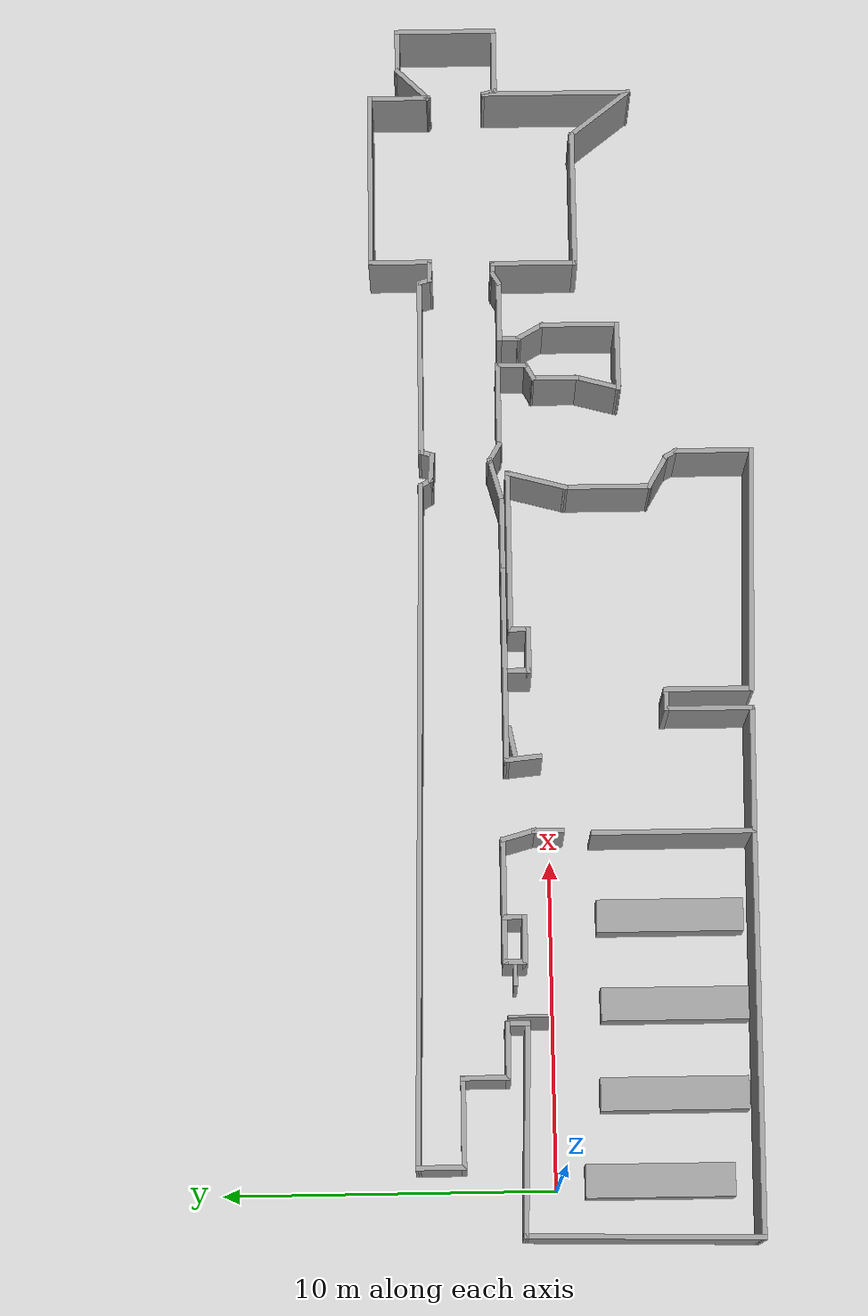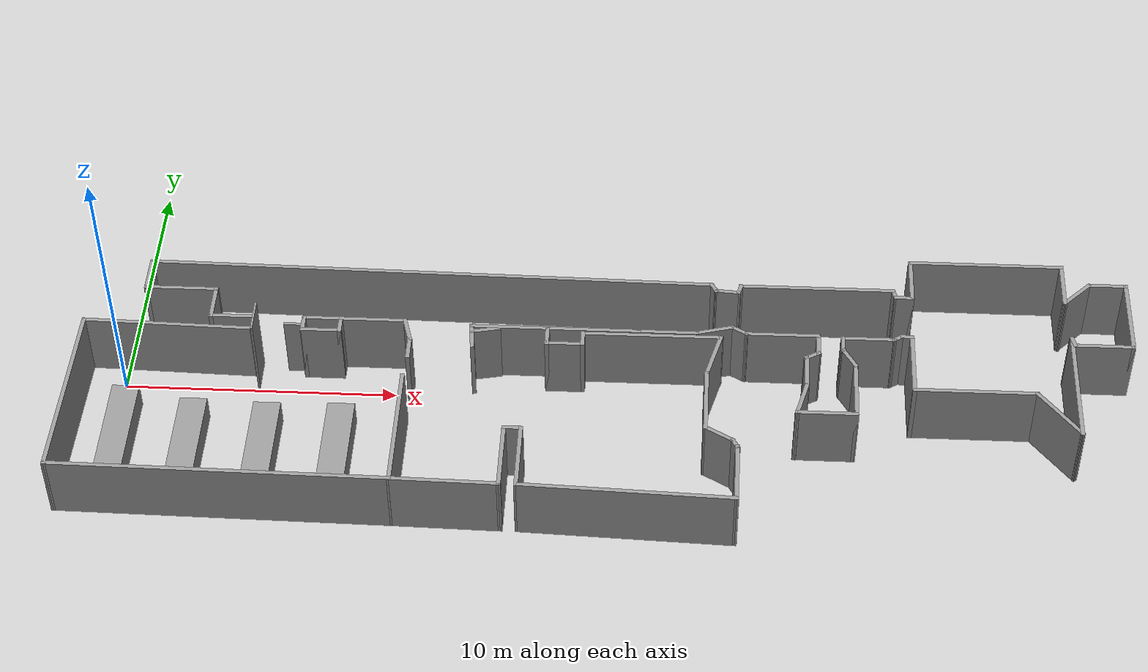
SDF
<sdf version="1.7">
 <world name="default">
  <light name="sun" type="directional">
   <pose>0 0 10 0 -0 0</pose>
   <diffuse>0.8 0.8 0.8 1</diffuse>
   <specular>0.2 0.2 0.2 1</specular>
   <attenuation>
    <range>1000</range>
    <constant>0.9</constant>
    <linear>0.01</linear>
    <quadratic>0.001</quadratic>
   </attenuation>
   <direction>-0.5 0.1 -0.9</direction>
   <spot><inner_angle>0</inner_angle><outer_angle>0</outer_angle><falloff>0</falloff></spot>
  </light>
  <model name="ground_plane">
   <static>1</static>
   <link name="link">
    <collision name="collision">
     <geometry><plane><normal>0 0 1</normal><size>100 100</size></plane></geometry>
     <surface>
      <contact><collide_bitmask>65535</collide_bitmask></contact>
      <friction><ode><mu>100</mu><mu2>50</mu2></ode></friction>
     </surface>
    </collision>
    <visual name="visual">
     <cast_shadows>0</cast_shadows>
     <geometry><plane><normal>0 0 1</normal><size>100 100</size></plane></geometry>
     <material>
      <script><uri>file://media/materials/scripts/gazebo.material</uri><name>Gazebo/Grey</name></script>
     </material>
    </visual>
   </link>
  </model>
  <gravity>0 0 -9.8</gravity>
  <magnetic_field>6e-06 2.3e-05 -4.2e-05</magnetic_field>
  <atmosphere type="adiabatic"/>
  <physics type="ode">
   <max_step_size>0.001</max_step_size>
   <real_time_factor>1</real_time_factor>
   <real_time_update_rate>1000</real_time_update_rate>
  </physics>
  <scene><ambient>0.4 0.4 0.4 1</ambient><background>0.7 0.7 0.7 1</background><shadows>1</shadows></scene>
  <spherical_coordinates>
   <surface_model>EARTH_WGS84</surface_model>
   <latitude_deg>0</latitude_deg>
   <longitude_deg>0</longitude_deg>
   <elevation>0</elevation>
   <heading_deg>0</heading_deg>
  </spherical_coordinates>
  <model name="LAB_FEUPf">
   <pose>17.588 -0.590067 0 0 -0 0</pose>
   <link name="Wall_0">
    <collision name="Wall_0_Collision">
     <geometry><box><size>6.35491 0.15 2.5</size></box></geometry>
     <pose>0 0 1.25 0 -0 0</pose>
    </collision>
    <visual name="Wall_0_Visual">
     <pose>0 0 1.25 0 -0 0</pose>
     <geometry><box><size>6.35491 0.15 2.5</size></box></geometry>
     <material>
      <script><uri>file://media/materials/scripts/gazebo.material</uri><name>Gazebo/Grey</name></script>
      <ambient>1 1 1 1</ambient>
     </material>
     <meta><layer>0</layer></meta>
    </visual>
    <pose>-15.9124 1.49626 0 0 -0 -0.027711</pose>
   </link>
   <link name="Wall_1">
    <collision name="Wall_1_Collision">
     <geometry><box><size>0.75 0.15 2.5</size></box></geometry>
     <pose>0 0 1.25 0 -0 0</pose>
    </collision>
    <visual name="Wall_1_Visual">
     <pose>0 0 1.25 0 -0 0</pose>
     <geometry><box><size>0.75 0.15 2.5</size></box></geometry>
     <material>
      <script><uri>file://media/materials/scripts/gazebo.material</uri><name>Gazebo/Grey</name></script>
      <ambient>1 1 1 1</ambient>
     </material>
     <meta><layer>0</layer></meta>
    </visual>
    <pose>-12.8111 1.7103 0 0 -0 1.5708</pose>
   </link>
   <link name="Wall_10">
    <collision name="Wall_10_Collision">
     <geometry><box><size>2.5 0.15 2.5</size></box></geometry>
     <pose>0 0 1.25 0 -0 0</pose>
    </collision>
    <visual name="Wall_10_Visual">
     <pose>0 0 1.25 0 -0 0</pose>
     <geometry><box><size>2.5 0.15 2.5</size></box></geometry>
     <material>
      <script><uri>file://media/materials/scripts/gazebo.material</uri><name>Gazebo/Grey</name></script>
      <ambient>1 1 1 1</ambient>
     </material>
     <meta><layer>0</layer></meta>
    </visual>
    <pose>-8.46271 2.05017 0 0 -0 3.14159</pose>
   </link>
   <link name="Wall_11">
    <collision name="Wall_11_Collision">
     <geometry><box><size>0.75 0.15 2.5</size></box></geometry>
     <pose>0 0 1.25 0 -0 0</pose>
    </collision>
    <visual name="Wall_11_Visual">
     <pose>0 0 1.25 0 -0 0</pose>
     <geometry><box><size>0.75 0.15 2.5</size></box></geometry>
     <material>
      <script><uri>file://media/materials/scripts/gazebo.material</uri><name>Gazebo/Grey</name></script>
      <ambient>1 1 1 1</ambient>
     </material>
     <meta><layer>0</layer></meta>
    </visual>
    <pose>-9.63771 1.75017 0 0 -0 -1.5708</pose>
   </link>
   <link name="Wall_12">
    <collision name="Wall_12_Collision">
     <geometry><box><size>1.5 0.15 2.5</size></box></geometry>
     <pose>0 0 1.25 0 -0 0</pose>
    </collision>
    <visual name="Wall_12_Visual">
     <pose>0 0 1.25 0 -0 0</pose>
     <geometry><box><size>1.5 0.15 2.5</size></box></geometry>
     <material>
      <script><uri>file://media/materials/scripts/gazebo.material</uri><name>Gazebo/Grey</name></script>
      <ambient>1 1 1 1</ambient>
     </material>
     <meta><layer>0</layer></meta>
    </visual>
    <pose>-10.3127 1.45017 0 0 -0 3.14159</pose>
   </link>
   <link name="Wall_13">
    <collision name="Wall_13_Collision">
     <geometry><box><size>0.75 0.15 2.5</size></box></geometry>
     <pose>0 0 1.25 0 -0 0</pose>
    </collision>
    <visual name="Wall_13_Visual">
     <pose>0 0 1.25 0 -0 0</pose>
     <geometry><box><size>0.75 0.15 2.5</size></box></geometry>
     <material>
      <script><uri>file://media/materials/scripts/gazebo.material</uri><name>Gazebo/Grey</name></script>
      <ambient>1 1 1 1</ambient>
     </material>
     <meta><layer>0</layer></meta>
    </visual>
    <pose>-10.9877 1.75017 0 0 -0 1.5708</pose>
   </link>
   <link name="Wall_14">
    <collision name="Wall_14_Collision">
     <geometry><box><size>1.5 0.15 2.5</size></box></geometry>
     <pose>0 0 1.25 0 -0 0</pose>
    </collision>
    <visual name="Wall_14_Visual">
     <pose>0 0 1.25 0 -0 0</pose>
     <geometry><box><size>1.5 0.15 2.5</size></box></geometry>
     <material>
      <script><uri>file://media/materials/scripts/gazebo.material</uri><name>Gazebo/Grey</name></script>
      <ambient>1 1 1 1</ambient>
     </material>
     <meta><layer>0</layer></meta>
    </visual>
    <pose>-10.3127 2.05017 0 0 -0 0</pose>
   </link>
   <link name="Wall_16">
    <collision name="Wall_16_Collision">
     <geometry><box><size>1.75 0.15 2.5</size></box></geometry>
     <pose>0 0 1.25 0 -0 0</pose>
    </collision>
    <visual name="Wall_16_Visual">
     <pose>0 0 1.25 0 -0 0</pose>
     <geometry><box><size>1.75 0.15 2.5</size></box></geometry>
     <material>
      <script><uri>file://media/materials/scripts/gazebo.material</uri><name>Gazebo/Grey</name></script>
      <ambient>1 1 1 1</ambient>
     </material>
     <meta><layer>0</layer></meta>
    </visual>
    <pose>-13.6111 2.0103 0 0 -0 3.14159</pose>
   </link>
   <link name="Wall_17">
    <collision name="Wall_17_Collision">
     <geometry><box><size>1.5 0.15 2.5</size></box></geometry>
     <pose>0 0 1.25 0 -0 0</pose>
    </collision>
    <visual name="Wall_17_Visual">
     <pose>0 0 1.25 0 -0 0</pose>
     <geometry><box><size>1.5 0.15 2.5</size></box></geometry>
     <material>
      <script><uri>file://media/materials/scripts/gazebo.material</uri><name>Gazebo/Grey</name></script>
      <ambient>1 1 1 1</ambient>
     </material>
     <meta><layer>0</layer></meta>
    </visual>
    <pose>-14.4111 2.6853 0 0 -0 1.5708</pose>
   </link>
   <link name="Wall_18">
    <collision name="Wall_18_Collision">
     <geometry><box><size>2.75 0.15 2.5</size></box></geometry>
     <pose>0 0 1.25 0 -0 0</pose>
    </collision>
    <visual name="Wall_18_Visual">
     <pose>0 0 1.25 0 -0 0</pose>
     <geometry><box><size>2.75 0.15 2.5</size></box></geometry>
     <material>
      <script><uri>file://media/materials/scripts/gazebo.material</uri><name>Gazebo/Grey</name></script>
      <ambient>1 1 1 1</ambient>
     </material>
     <meta><layer>0</layer></meta>
    </visual>
    <pose>-15.7111 3.3603 0 0 -0 3.14159</pose>
   </link>
   <link name="Wall_19">
    <collision name="Wall_19_Collision">
     <geometry><box><size>1.5 0.15 2.5</size></box></geometry>
     <pose>0 0 1.25 0 -0 0</pose>
    </collision>
    <visual name="Wall_19_Visual">
     <pose>0 0 1.25 0 -0 0</pose>
     <geometry><box><size>1.5 0.15 2.5</size></box></geometry>
     <material>
      <script><uri>file://media/materials/scripts/gazebo.material</uri><name>Gazebo/Grey</name></script>
      <ambient>1 1 1 1</ambient>
     </material>
     <meta><layer>0</layer></meta>
    </visual>
    <pose>-17.0111 4.0353 0 0 -0 1.5708</pose>
   </link>
   <link name="Wall_21">
    <collision name="Wall_21_Collision">
     <geometry><box><size>21.0277 0.15 2.5</size></box></geometry>
     <pose>0 0 1.25 0 -0 0</pose>
    </collision>
    <visual name="Wall_21_Visual">
     <pose>0 0 1.25 0 -0 0</pose>
     <geometry><box><size>21.0277 0.15 2.5</size></box></geometry>
     <material>
      <script><uri>file://media/materials/scripts/gazebo.material</uri><name>Gazebo/Grey</name></script>
      <ambient>1 1 1 1</ambient>
     </material>
     <meta><layer>0</layer></meta>
    </visual>
    <pose>-6.57344 4.55455 0 0 -0 -0.014921</pose>
   </link>
   <link name="Wall_22">
    <collision name="Wall_22_Collision">
     <geometry><box><size>0.5 0.15 2.5</size></box></geometry>
     <pose>0 0 1.25 0 -0 0</pose>
    </collision>
    <visual name="Wall_22_Visual">
     <pose>0 0 1.25 0 -0 0</pose>
     <geometry><box><size>0.5 0.15 2.5</size></box></geometry>
     <material>
      <script><uri>file://media/materials/scripts/gazebo.material</uri><name>Gazebo/Grey</name></script>
      <ambient>1 1 1 1</ambient>
     </material>
     <meta><layer>0</layer></meta>
    </visual>
    <pose>3.95174 4.24724 0 0 -0 -1.0472</pose>
   </link>
   <link name="Wall_23">
    <collision name="Wall_23_Collision">
     <geometry><box><size>0.978997 0.15 2.5</size></box></geometry>
     <pose>0 0 1.25 0 -0 0</pose>
    </collision>
    <visual name="Wall_23_Visual">
     <pose>0 0 1.25 0 -0 0</pose>
     <geometry><box><size>0.978997 0.15 2.5</size></box></geometry>
     <material>
      <script><uri>file://media/materials/scripts/gazebo.material</uri><name>Gazebo/Grey</name></script>
      <ambient>1 1 1 1</ambient>
     </material>
     <meta><layer>0</layer></meta>
    </visual>
    <pose>4.45273 4.06694 0 0 -0 -0.069417</pose>
   </link>
   <link name="Wall_26">
    <collision name="Wall_26_Collision">
     <geometry><box><size>0.5 0.15 2.5</size></box></geometry>
     <pose>0 0 1.25 0 -0 0</pose>
    </collision>
    <visual name="Wall_26_Visual">
     <pose>0 0 1.25 0 -0 0</pose>
     <geometry><box><size>0.5 0.15 2.5</size></box></geometry>
     <material>
      <script><uri>file://media/materials/scripts/gazebo.material</uri><name>Gazebo/Grey</name></script>
      <ambient>1 1 1 1</ambient>
     </material>
     <meta><layer>0</layer></meta>
    </visual>
    <pose>4.91153 4.20723 0 0 -0 1.309</pose>
   </link>
   <link name="Wall_27">
    <collision name="Wall_27_Collision">
     <geometry><box><size>5.75 0.15 2.5</size></box></geometry>
     <pose>0 0 1.25 0 -0 0</pose>
    </collision>
    <visual name="Wall_27_Visual">
     <pose>0 0 1.25 0 -0 0</pose>
     <geometry><box><size>5.75 0.15 2.5</size></box></geometry>
     <material>
      <script><uri>file://media/materials/scripts/gazebo.material</uri><name>Gazebo/Grey</name></script>
      <ambient>1 1 1 1</ambient>
     </material>
     <meta><layer>0</layer></meta>
    </visual>
    <pose>7.75682 4.37626 0 0 -0 0</pose>
   </link>
   <link name="Wall_28">
    <collision name="Wall_28_Collision">
     <geometry><box><size>0.5 0.15 2.5</size></box></geometry>
     <pose>0 0 1.25 0 -0 0</pose>
    </collision>
    <visual name="Wall_28_Visual">
     <pose>0 0 1.25 0 -0 0</pose>
     <geometry><box><size>0.5 0.15 2.5</size></box></geometry>
     <material>
      <script><uri>file://media/materials/scripts/gazebo.material</uri><name>Gazebo/Grey</name></script>
      <ambient>1 1 1 1</ambient>
     </material>
     <meta><layer>0</layer></meta>
    </visual>
    <pose>10.6021 4.20723 0 0 -0 -1.309</pose>
   </link>
   <link name="Wall_29">
    <collision name="Wall_29_Collision">
     <geometry><box><size>0.75 0.15 2.5</size></box></geometry>
     <pose>0 0 1.25 0 -0 0</pose>
    </collision>
    <visual name="Wall_29_Visual">
     <pose>0 0 1.25 0 -0 0</pose>
     <geometry><box><size>0.75 0.15 2.5</size></box></geometry>
     <material>
      <script><uri>file://media/materials/scripts/gazebo.material</uri><name>Gazebo/Grey</name></script>
      <ambient>1 1 1 1</ambient>
     </material>
     <meta><layer>0</layer></meta>
    </visual>
    <pose>10.9474 4.03819 0 0 -0 0</pose>
   </link>
   <link name="Wall_30">
    <collision name="Wall_30_Collision">
     <geometry><box><size>2 0.15 2.5</size></box></geometry>
     <pose>0 0 1.25 0 -0 0</pose>
    </collision>
    <visual name="Wall_30_Visual">
     <pose>0 0 1.25 0 -0 0</pose>
     <geometry><box><size>2 0.15 2.5</size></box></geometry>
     <material>
      <script><uri>file://media/materials/scripts/gazebo.material</uri><name>Gazebo/Grey</name></script>
      <ambient>1 1 1 1</ambient>
     </material>
     <meta><layer>0</layer></meta>
    </visual>
    <pose>11.2474 4.96319 0 0 -0 1.5708</pose>
   </link>
   <link name="Wall_32">
    <collision name="Wall_32_Collision">
     <geometry><box><size>5.75 0.15 2.5</size></box></geometry>
     <pose>0 0 1.25 0 -0 0</pose>
    </collision>
    <visual name="Wall_32_Visual">
     <pose>0 0 1.25 0 -0 0</pose>
     <geometry><box><size>5.75 0.15 2.5</size></box></geometry>
     <material>
      <script><uri>file://media/materials/scripts/gazebo.material</uri><name>Gazebo/Grey</name></script>
      <ambient>1 1 1 1</ambient>
     </material>
     <meta><layer>0</layer></meta>
    </visual>
    <pose>14.0474 5.88819 0 0 -0 0</pose>
   </link>
   <link name="Wall_33">
    <collision name="Wall_33_Collision">
     <geometry><box><size>2 0.15 2.5</size></box></geometry>
     <pose>0 0 1.25 0 -0 0</pose>
    </collision>
    <visual name="Wall_33_Visual">
     <pose>0 0 1.25 0 -0 0</pose>
     <geometry><box><size>2 0.15 2.5</size></box></geometry>
     <material>
      <script><uri>file://media/materials/scripts/gazebo.material</uri><name>Gazebo/Grey</name></script>
      <ambient>1 1 1 1</ambient>
     </material>
     <meta><layer>0</layer></meta>
    </visual>
    <pose>16.8474 4.96319 0 0 -0 -1.5708</pose>
   </link>
   <link name="Wall_34">
    <collision name="Wall_34_Collision">
     <geometry><box><size>1.5 0.15 2.5</size></box></geometry>
     <pose>0 0 1.25 0 -0 0</pose>
    </collision>
    <visual name="Wall_34_Visual">
     <pose>0 0 1.25 0 -0 0</pose>
     <geometry><box><size>1.5 0.15 2.5</size></box></geometry>
     <material>
      <script><uri>file://media/materials/scripts/gazebo.material</uri><name>Gazebo/Grey</name></script>
      <ambient>1 1 1 1</ambient>
     </material>
     <meta><layer>0</layer></meta>
    </visual>
    <pose>17.3247 4.51549 0 0 -0 0.785398</pose>
   </link>
   <link name="Wall_35">
    <collision name="Wall_35_Collision">
     <geometry><box><size>1.5 0.15 2.5</size></box></geometry>
     <pose>0 0 1.25 0 -0 0</pose>
    </collision>
    <visual name="Wall_35_Visual">
     <pose>0 0 1.25 0 -0 0</pose>
     <geometry><box><size>1.5 0.15 2.5</size></box></geometry>
     <material>
      <script><uri>file://media/materials/scripts/gazebo.material</uri><name>Gazebo/Grey</name></script>
      <ambient>1 1 1 1</ambient>
     </material>
     <meta><layer>0</layer></meta>
    </visual>
    <pose>18.477 4.99278 0 0 -0 0</pose>
   </link>
   <link name="Wall_36">
    <collision name="Wall_36_Collision">
     <geometry><box><size>3.25 0.15 2.5</size></box></geometry>
     <pose>0 0 1.25 0 -0 0</pose>
    </collision>
    <visual name="Wall_36_Visual">
     <pose>0 0 1.25 0 -0 0</pose>
     <geometry><box><size>3.25 0.15 2.5</size></box></geometry>
     <material>
      <script><uri>file://media/materials/scripts/gazebo.material</uri><name>Gazebo/Grey</name></script>
      <ambient>1 1 1 1</ambient>
     </material>
     <meta><layer>0</layer></meta>
    </visual>
    <pose>19.152 3.44278 0 0 -0 -1.5708</pose>
   </link>
   <link name="Wall_37">
    <collision name="Wall_37_Collision">
     <geometry><box><size>2.25 0.15 2.5</size></box></geometry>
     <pose>0 0 1.25 0 -0 0</pose>
    </collision>
    <visual name="Wall_37_Visual">
     <pose>0 0 1.25 0 -0 0</pose>
     <geometry><box><size>2.25 0.15 2.5</size></box></geometry>
     <material>
      <script><uri>file://media/materials/scripts/gazebo.material</uri><name>Gazebo/Grey</name></script>
      <ambient>1 1 1 1</ambient>
     </material>
     <meta><layer>0</layer></meta>
    </visual>
    <pose>18.102 1.89278 0 0 -0 3.14159</pose>
   </link>
   <link name="Wall_38">
    <collision name="Wall_38_Collision">
     <geometry><box><size>0.5 0.15 2.5</size></box></geometry>
     <pose>0 0 1.25 0 -0 0</pose>
    </collision>
    <visual name="Wall_38_Visual">
     <pose>0 0 1.25 0 -0 0</pose>
     <geometry><box><size>0.5 0.15 2.5</size></box></geometry>
     <material>
      <script><uri>file://media/materials/scripts/gazebo.material</uri><name>Gazebo/Grey</name></script>
      <ambient>1 1 1 1</ambient>
     </material>
     <meta><layer>0</layer></meta>
    </visual>
    <pose>17.0067 2.06182 0 0 -0 1.8326</pose>
   </link>
   <link name="Wall_4">
    <collision name="Wall_4_Collision">
     <geometry><box><size>7.09007 0.15 2.5</size></box></geometry>
     <pose>0 0 1.25 0 -0 0</pose>
    </collision>
    <visual name="Wall_4_Visual">
     <pose>0 0 1.25 0 -0 0</pose>
     <geometry><box><size>7.09007 0.15 2.5</size></box></geometry>
     <material>
      <script><uri>file://media/materials/scripts/gazebo.material</uri><name>Gazebo/Grey</name></script>
      <ambient>1 1 1 1</ambient>
     </material>
     <meta><layer>0</layer></meta>
    </visual>
    <pose>-19.0821 -1.88713 0 0 -0 -1.59052</pose>
   </link>
   <link name="Wall_40">
    <collision name="Wall_40_Collision">
     <geometry><box><size>4.75 0.15 2.5</size></box></geometry>
     <pose>0 0 1.25 0 -0 0</pose>
    </collision>
    <visual name="Wall_40_Visual">
     <pose>0 0 1.25 0 -0 0</pose>
     <geometry><box><size>4.75 0.15 2.5</size></box></geometry>
     <material>
      <script><uri>file://media/materials/scripts/gazebo.material</uri><name>Gazebo/Grey</name></script>
      <ambient>1 1 1 1</ambient>
     </material>
     <meta><layer>0</layer></meta>
    </visual>
    <pose>16.9614 -0.069143 0 0 -0 -1.5708</pose>
   </link>
   <link name="Wall_41">
    <collision name="Wall_41_Collision">
     <geometry><box><size>2.47212 0.15 2.5</size></box></geometry>
     <pose>0 0 1.25 0 -0 0</pose>
    </collision>
    <visual name="Wall_41_Visual">
     <pose>0 0 1.25 0 -0 0</pose>
     <geometry><box><size>2.47212 0.15 2.5</size></box></geometry>
     <material>
      <script><uri>file://media/materials/scripts/gazebo.material</uri><name>Gazebo/Grey</name></script>
      <ambient>1 1 1 1</ambient>
     </material>
     <meta><layer>0</layer></meta>
    </visual>
    <pose>16.2402 -1.45924 0 0 -0 2.24102</pose>
   </link>
   <link name="Wall_42">
    <collision name="Wall_42_Collision">
     <geometry><box><size>4.5 0.15 2.5</size></box></geometry>
     <pose>0 0 1.25 0 -0 0</pose>
    </collision>
    <visual name="Wall_42_Visual">
     <pose>0 0 1.25 0 -0 0</pose>
     <geometry><box><size>4.5 0.15 2.5</size></box></geometry>
     <material>
      <script><uri>file://media/materials/scripts/gazebo.material</uri><name>Gazebo/Grey</name></script>
      <ambient>1 1 1 1</ambient>
     </material>
     <meta><layer>0</layer></meta>
    </visual>
    <pose>13.344 -0.549337 0 0 -0 3.14159</pose>
   </link>
   <link name="Wall_43">
    <collision name="Wall_43_Collision">
     <geometry><box><size>2.75 0.15 2.5</size></box></geometry>
     <pose>0 0 1.25 0 -0 0</pose>
    </collision>
    <visual name="Wall_43_Visual">
     <pose>0 0 1.25 0 -0 0</pose>
     <geometry><box><size>2.75 0.15 2.5</size></box></geometry>
     <material>
      <script><uri>file://media/materials/scripts/gazebo.material</uri><name>Gazebo/Grey</name></script>
      <ambient>1 1 1 1</ambient>
     </material>
     <meta><layer>0</layer></meta>
    </visual>
    <pose>11.169 0.750663 0 0 -0 1.5708</pose>
   </link>
   <link name="Wall_44">
    <collision name="Wall_44_Collision">
     <geometry><box><size>0.5 0.15 2.5</size></box></geometry>
     <pose>0 0 1.25 0 -0 0</pose>
    </collision>
    <visual name="Wall_44_Visual">
     <pose>0 0 1.25 0 -0 0</pose>
     <geometry><box><size>0.5 0.15 2.5</size></box></geometry>
     <material>
      <script><uri>file://media/materials/scripts/gazebo.material</uri><name>Gazebo/Grey</name></script>
      <ambient>1 1 1 1</ambient>
     </material>
     <meta><layer>0</layer></meta>
    </visual>
    <pose>10.994 2.05066 0 0 -0 3.14159</pose>
   </link>
   <link name="Wall_45">
    <collision name="Wall_45_Collision">
     <geometry><box><size>0.5 0.15 2.5</size></box></geometry>
     <pose>0 0 1.25 0 -0 0</pose>
    </collision>
    <visual name="Wall_45_Visual">
     <pose>0 0 1.25 0 -0 0</pose>
     <geometry><box><size>0.5 0.15 2.5</size></box></geometry>
     <material>
      <script><uri>file://media/materials/scripts/gazebo.material</uri><name>Gazebo/Grey</name></script>
      <ambient>1 1 1 1</ambient>
     </material>
     <meta><layer>0</layer></meta>
    </visual>
    <pose>10.6674 1.96316 0 0 -0 -2.61799</pose>
   </link>
   <link name="Wall_47">
    <collision name="Wall_47_Collision">
     <geometry><box><size>2 0.15 2.5</size></box></geometry>
     <pose>0 0 1.25 0 -0 0</pose>
    </collision>
    <visual name="Wall_47_Visual">
     <pose>0 0 1.25 0 -0 0</pose>
     <geometry><box><size>2 0.15 2.5</size></box></geometry>
     <material>
      <script><uri>file://media/materials/scripts/gazebo.material</uri><name>Gazebo/Grey</name></script>
      <ambient>1 1 1 1</ambient>
     </material>
     <meta><layer>0</layer></meta>
    </visual>
    <pose>9.59089 1.87566 0 0 -0 3.14159</pose>
   </link>
   <link name="Wall_48">
    <collision name="Wall_48_Collision">
     <geometry><box><size>0.75 0.15 2.5</size></box></geometry>
     <pose>0 0 1.25 0 -0 0</pose>
    </collision>
    <visual name="Wall_48_Visual">
     <pose>0 0 1.25 0 -0 0</pose>
     <geometry><box><size>0.75 0.15 2.5</size></box></geometry>
     <material>
      <script><uri>file://media/materials/scripts/gazebo.material</uri><name>Gazebo/Grey</name></script>
      <ambient>1 1 1 1</ambient>
     </material>
     <meta><layer>0</layer></meta>
    </visual>
    <pose>8.66589 1.57566 0 0 -0 -1.5708</pose>
   </link>
   <link name="Wall_49">
    <collision name="Wall_49_Collision">
     <geometry><box><size>1 0.15 2.5</size></box></geometry>
     <pose>0 0 1.25 0 -0 0</pose>
    </collision>
    <visual name="Wall_49_Visual">
     <pose>0 0 1.25 0 -0 0</pose>
     <geometry><box><size>1 0.15 2.5</size></box></geometry>
     <material>
      <script><uri>file://media/materials/scripts/gazebo.material</uri><name>Gazebo/Grey</name></script>
      <ambient>1 1 1 1</ambient>
     </material>
     <meta><layer>0</layer></meta>
    </visual>
    <pose>8.87839 0.907602 0 0 -0 -1.0472</pose>
   </link>
   <link name="Wall_5">
    <collision name="Wall_5_Collision">
     <geometry><box><size>12.1811 0.15 2.5</size></box></geometry>
     <pose>0 0 1.25 0 -0 0</pose>
    </collision>
    <visual name="Wall_5_Visual">
     <pose>0 0 1.25 0 -0 0</pose>
     <geometry><box><size>12.1811 0.15 2.5</size></box></geometry>
     <material>
      <script><uri>file://media/materials/scripts/gazebo.material</uri><name>Gazebo/Grey</name></script>
      <ambient>1 1 1 1</ambient>
     </material>
     <meta><layer>0</layer></meta>
    </visual>
    <pose>-13.1355 -5.44014 0 0 -0 -0.013906</pose>
   </link>
   <link name="Wall_50">
    <collision name="Wall_50_Collision">
     <geometry><box><size>2.5 0.15 2.5</size></box></geometry>
     <pose>0 0 1.25 0 -0 0</pose>
    </collision>
    <visual name="Wall_50_Visual">
     <pose>0 0 1.25 0 -0 0</pose>
     <geometry><box><size>2.5 0.15 2.5</size></box></geometry>
     <material>
      <script><uri>file://media/materials/scripts/gazebo.material</uri><name>Gazebo/Grey</name></script>
      <ambient>1 1 1 1</ambient>
     </material>
     <meta><layer>0</layer></meta>
    </visual>
    <pose>9.09089 -0.635459 0 0 -0 -1.5708</pose>
   </link>
   <link name="Wall_51">
    <collision name="Wall_51_Collision">
     <geometry><box><size>2.25 0.15 2.5</size></box></geometry>
     <pose>0 0 1.25 0 -0 0</pose>
    </collision>
    <visual name="Wall_51_Visual">
     <pose>0 0 1.25 0 -0 0</pose>
     <geometry><box><size>2.25 0.15 2.5</size></box></geometry>
     <material>
      <script><uri>file://media/materials/scripts/gazebo.material</uri><name>Gazebo/Grey</name></script>
      <ambient>1 1 1 1</ambient>
     </material>
     <meta><layer>0</layer></meta>
    </visual>
    <pose>8.04089 -1.81046 0 0 -0 3.14159</pose>
   </link>
   <link name="Wall_52">
    <collision name="Wall_52_Collision">
     <geometry><box><size>1.5 0.15 2.5</size></box></geometry>
     <pose>0 0 1.25 0 -0 0</pose>
    </collision>
    <visual name="Wall_52_Visual">
     <pose>0 0 1.25 0 -0 0</pose>
     <geometry><box><size>1.5 0.15 2.5</size></box></geometry>
     <material>
      <script><uri>file://media/materials/scripts/gazebo.material</uri><name>Gazebo/Grey</name></script>
      <ambient>1 1 1 1</ambient>
     </material>
     <meta><layer>0</layer></meta>
    </visual>
    <pose>7.16559 -1.15846 0 0 -0 1.309</pose>
   </link>
   <link name="Wall_53">
    <collision name="Wall_53_Collision">
     <geometry><box><size>1.5 0.15 2.5</size></box></geometry>
     <pose>0 0 1.25 0 -0 0</pose>
    </collision>
    <visual name="Wall_53_Visual">
     <pose>0 0 1.25 0 -0 0</pose>
     <geometry><box><size>1.5 0.15 2.5</size></box></geometry>
     <material>
      <script><uri>file://media/materials/scripts/gazebo.material</uri><name>Gazebo/Grey</name></script>
      <ambient>1 1 1 1</ambient>
     </material>
     <meta><layer>0</layer></meta>
    </visual>
    <pose>7.3403 0.168541 0 0 -0 1.5708</pose>
   </link>
   <link name="Wall_54">
    <collision name="Wall_54_Collision">
     <geometry><box><size>0.647611 0.15 2.5</size></box></geometry>
     <pose>0 0 1.25 0 -0 0</pose>
    </collision>
    <visual name="Wall_54_Visual">
     <pose>0 0 1.25 0 -0 0</pose>
     <geometry><box><size>0.647611 0.15 2.5</size></box></geometry>
     <material>
      <script><uri>file://media/materials/scripts/gazebo.material</uri><name>Gazebo/Grey</name></script>
      <ambient>1 1 1 1</ambient>
     </material>
     <meta><layer>0</layer></meta>
    </visual>
    <pose>7.55818 0.963673 0 0 -0 0.503889</pose>
   </link>
   <link name="Wall_55">
    <collision name="Wall_55_Collision">
     <geometry><box><size>1 0.15 2.5</size></box></geometry>
     <pose>0 0 1.25 0 -0 0</pose>
    </collision>
    <visual name="Wall_55_Visual">
     <pose>0 0 1.25 0 -0 0</pose>
     <geometry><box><size>1 0.15 2.5</size></box></geometry>
     <material>
      <script><uri>file://media/materials/scripts/gazebo.material</uri><name>Gazebo/Grey</name></script>
      <ambient>1 1 1 1</ambient>
     </material>
     <meta><layer>0</layer></meta>
    </visual>
    <pose>7.77606 1.52031 0 0 -0 1.5708</pose>
   </link>
   <link name="Wall_57">
    <collision name="Wall_57_Collision">
     <geometry><box><size>2.75 0.15 2.5</size></box></geometry>
     <pose>0 0 1.25 0 -0 0</pose>
    </collision>
    <visual name="Wall_57_Visual">
     <pose>0 0 1.25 0 -0 0</pose>
     <geometry><box><size>2.75 0.15 2.5</size></box></geometry>
     <material>
      <script><uri>file://media/materials/scripts/gazebo.material</uri><name>Gazebo/Grey</name></script>
      <ambient>1 1 1 1</ambient>
     </material>
     <meta><layer>0</layer></meta>
    </visual>
    <pose>6.47606 1.94531 0 0 -0 3.14159</pose>
   </link>
   <link name="Wall_58">
    <collision name="Wall_58_Collision">
     <geometry><box><size>0.75 0.15 2.5</size></box></geometry>
     <pose>0 0 1.25 0 -0 0</pose>
    </collision>
    <visual name="Wall_58_Visual">
     <pose>0 0 1.25 0 -0 0</pose>
     <geometry><box><size>0.75 0.15 2.5</size></box></geometry>
     <material>
      <script><uri>file://media/materials/scripts/gazebo.material</uri><name>Gazebo/Grey</name></script>
      <ambient>1 1 1 1</ambient>
     </material>
     <meta><layer>0</layer></meta>
    </visual>
    <pose>4.91625 2.09531 0 0 -0 2.61799</pose>
   </link>
   <link name="Wall_59">
    <collision name="Wall_59_Collision">
     <geometry><box><size>1.5 0.15 2.5</size></box></geometry>
     <pose>0 0 1.25 0 -0 0</pose>
    </collision>
    <visual name="Wall_59_Visual">
     <pose>0 0 1.25 0 -0 0</pose>
     <geometry><box><size>1.5 0.15 2.5</size></box></geometry>
     <material>
      <script><uri>file://media/materials/scripts/gazebo.material</uri><name>Gazebo/Grey</name></script>
      <ambient>1 1 1 1</ambient>
     </material>
     <meta><layer>0</layer></meta>
    </visual>
    <pose>4.00445 2.0706 0 0 -0 -2.87979</pose>
   </link>
   <link name="Wall_6">
    <collision name="Wall_6_Collision">
     <geometry><box><size>5 0.15 2.5</size></box></geometry>
     <pose>0 0 1.25 0 -0 0</pose>
    </collision>
    <visual name="Wall_6_Visual">
     <pose>0 0 1.25 0 -0 0</pose>
     <geometry><box><size>5 0.15 2.5</size></box></geometry>
     <material>
      <script><uri>file://media/materials/scripts/gazebo.material</uri><name>Gazebo/Grey</name></script>
      <ambient>1 1 1 1</ambient>
     </material>
     <meta><layer>0</layer></meta>
    </visual>
    <pose>-7.12042 -3.09878 0 0 -0 1.5708</pose>
   </link>
   <link name="Wall_60">
    <collision name="Wall_60_Collision">
     <geometry><box><size>2.25 0.15 2.5</size></box></geometry>
     <pose>0 0 1.25 0 -0 0</pose>
    </collision>
    <visual name="Wall_60_Visual">
     <pose>0 0 1.25 0 -0 0</pose>
     <geometry><box><size>2.25 0.15 2.5</size></box></geometry>
     <material>
      <script><uri>file://media/materials/scripts/gazebo.material</uri><name>Gazebo/Grey</name></script>
      <ambient>1 1 1 1</ambient>
     </material>
     <meta><layer>0</layer></meta>
    </visual>
    <pose>2.30245 1.8959 0 0 -0 3.14159</pose>
   </link>
   <link name="Wall_62">
    <collision name="Wall_62_Collision">
     <geometry><box><size>6.25 0.15 2.5</size></box></geometry>
     <pose>0 0 1.25 0 -0 0</pose>
    </collision>
    <visual name="Wall_62_Visual">
     <pose>0 0 1.25 0 -0 0</pose>
     <geometry><box><size>6.25 0.15 2.5</size></box></geometry>
     <material>
      <script><uri>file://media/materials/scripts/gazebo.material</uri><name>Gazebo/Grey</name></script>
      <ambient>1 1 1 1</ambient>
     </material>
     <meta><layer>0</layer></meta>
    </visual>
    <pose>-1.79755 1.8959 0 0 -0 3.14159</pose>
   </link>
   <link name="Wall_64">
    <collision name="Wall_64_Collision">
     <geometry><box><size>1.1516 0.15 2.5</size></box></geometry>
     <pose>0 0 1.25 0 -0 0</pose>
    </collision>
    <visual name="Wall_64_Visual">
     <pose>0 0 1.25 0 -0 0</pose>
     <geometry><box><size>1.1516 0.15 2.5</size></box></geometry>
     <material>
      <script><uri>file://media/materials/scripts/gazebo.material</uri><name>Gazebo/Grey</name></script>
      <ambient>1 1 1 1</ambient>
     </material>
     <meta><layer>0</layer></meta>
    </visual>
    <pose>-4.79578 1.39778 0 0 -0 -1.46722</pose>
   </link>
   <link name="Wall_67">
    <collision name="Wall_67_Collision">
     <geometry><box><size>1.0995 0.15 2.5</size></box></geometry>
     <pose>0 0 1.25 0 -0 0</pose>
    </collision>
    <visual name="Wall_67_Visual">
     <pose>0 0 1.25 0 -0 0</pose>
     <geometry><box><size>1.0995 0.15 2.5</size></box></geometry>
     <material>
      <script><uri>file://media/materials/scripts/gazebo.material</uri><name>Gazebo/Grey</name></script>
      <ambient>1 1 1 1</ambient>
     </material>
     <meta><layer>0</layer></meta>
    </visual>
    <pose>-4.32425 1.71616 0 0 -0 0.19502</pose>
   </link>
   <link name="Wall_69">
    <collision name="Wall_69_Collision">
     <geometry><box><size>0.8515 0.15 2.5</size></box></geometry>
     <pose>0 0 1.25 0 -0 0</pose>
    </collision>
    <visual name="Wall_69_Visual">
     <pose>0 0 1.25 0 -0 0</pose>
     <geometry><box><size>0.8515 0.15 2.5</size></box></geometry>
     <material>
      <script><uri>file://media/materials/scripts/gazebo.material</uri><name>Gazebo/Grey</name></script>
      <ambient>1 1 1 1</ambient>
     </material>
     <meta><layer>0</layer></meta>
    </visual>
    <pose>-2.0645 1.51491 0 0 -0 -1.5708</pose>
   </link>
   <link name="Wall_70">
    <collision name="Wall_70_Collision">
     <geometry><box><size>1.4495 0.15 2.5</size></box></geometry>
     <pose>0 0 1.25 0 -0 0</pose>
    </collision>
    <visual name="Wall_70_Visual">
     <pose>0 0 1.25 0 -0 0</pose>
     <geometry><box><size>1.4495 0.15 2.5</size></box></geometry>
     <material>
      <script><uri>file://media/materials/scripts/gazebo.material</uri><name>Gazebo/Grey</name></script>
      <ambient>1 1 1 1</ambient>
     </material>
     <meta><layer>0</layer></meta>
    </visual>
    <pose>-1.41475 1.16416 0 0 -0 0</pose>
   </link>
   <link name="Wall_71">
    <collision name="Wall_71_Collision">
     <geometry><box><size>0.690989 0.15 2.5</size></box></geometry>
     <pose>0 0 1.25 0 -0 0</pose>
    </collision>
    <visual name="Wall_71_Visual">
     <pose>0 0 1.25 0 -0 0</pose>
     <geometry><box><size>0.690989 0.15 2.5</size></box></geometry>
     <material>
      <script><uri>file://media/materials/scripts/gazebo.material</uri><name>Gazebo/Grey</name></script>
      <ambient>1 1 1 1</ambient>
     </material>
     <meta><layer>0</layer></meta>
    </visual>
    <pose>-0.765 1.43441 0 0 -0 1.5708</pose>
   </link>
   <link name="Wall_72">
    <collision name="Wall_72_Collision">
     <geometry><box><size>5.1525 0.15 2.5</size></box></geometry>
     <pose>0 0 1.25 0 -0 0</pose>
    </collision>
    <visual name="Wall_72_Visual">
     <pose>0 0 1.25 0 -0 0</pose>
     <geometry><box><size>5.1525 0.15 2.5</size></box></geometry>
     <material>
      <script><uri>file://media/materials/scripts/gazebo.material</uri><name>Gazebo/Grey</name></script>
      <ambient>1 1 1 1</ambient>
     </material>
     <meta><layer>0</layer></meta>
    </visual>
    <pose>1.73625 1.70466 0 0 -0 0</pose>
   </link>
   <link name="Wall_74">
    <collision name="Wall_74_Collision">
     <geometry><box><size>2 0.15 2.5</size></box></geometry>
     <pose>0 0 1.25 0 -0 0</pose>
    </collision>
    <visual name="Wall_74_Visual">
     <pose>0 0 1.25 0 -0 0</pose>
     <geometry><box><size>2 0.15 2.5</size></box></geometry>
     <material>
      <script><uri>file://media/materials/scripts/gazebo.material</uri><name>Gazebo/Grey</name></script>
      <ambient>1 1 1 1</ambient>
     </material>
     <meta><layer>0</layer></meta>
    </visual>
    <pose>3.99809 0.811181 0 0 -0 -1.8326</pose>
   </link>
   <link name="Wall_75">
    <collision name="Wall_75_Collision">
     <geometry><box><size>2.75 0.15 2.5</size></box></geometry>
     <pose>0 0 1.25 0 -0 0</pose>
    </collision>
    <visual name="Wall_75_Visual">
     <pose>0 0 1.25 0 -0 0</pose>
     <geometry><box><size>2.75 0.15 2.5</size></box></geometry>
     <material>
      <script><uri>file://media/materials/scripts/gazebo.material</uri><name>Gazebo/Grey</name></script>
      <ambient>1 1 1 1</ambient>
     </material>
     <meta><layer>0</layer></meta>
    </visual>
    <pose>3.75868 -1.3823 0 0 -0 -1.5708</pose>
   </link>
   <link name="Wall_76">
    <collision name="Wall_76_Collision">
     <geometry><box><size>1.25 0.15 2.5</size></box></geometry>
     <pose>0 0 1.25 0 -0 0</pose>
    </collision>
    <visual name="Wall_76_Visual">
     <pose>0 0 1.25 0 -0 0</pose>
     <geometry><box><size>1.25 0.15 2.5</size></box></geometry>
     <material>
      <script><uri>file://media/materials/scripts/gazebo.material</uri><name>Gazebo/Grey</name></script>
      <ambient>1 1 1 1</ambient>
     </material>
     <meta><layer>0</layer></meta>
    </visual>
    <pose>4.235 -2.9573 0 0 -0 -0.523599</pose>
   </link>
   <link name="Wall_78">
    <collision name="Wall_78_Collision">
     <geometry><box><size>0.5 0.15 2.5</size></box></geometry>
     <pose>0 0 1.25 0 -0 0</pose>
    </collision>
    <visual name="Wall_78_Visual">
     <pose>0 0 1.25 0 -0 0</pose>
     <geometry><box><size>0.5 0.15 2.5</size></box></geometry>
     <material>
      <script><uri>file://media/materials/scripts/gazebo.material</uri><name>Gazebo/Grey</name></script>
      <ambient>1 1 1 1</ambient>
     </material>
     <meta><layer>0</layer></meta>
    </visual>
    <pose>4.79881 -3.38386 0 0 -0 -1.0472</pose>
   </link>
   <link name="Wall_79">
    <collision name="Wall_79_Collision">
     <geometry><box><size>2.5 0.15 2.5</size></box></geometry>
     <pose>0 0 1.25 0 -0 0</pose>
    </collision>
    <visual name="Wall_79_Visual">
     <pose>0 0 1.25 0 -0 0</pose>
     <geometry><box><size>2.5 0.15 2.5</size></box></geometry>
     <material>
      <script><uri>file://media/materials/scripts/gazebo.material</uri><name>Gazebo/Grey</name></script>
      <ambient>1 1 1 1</ambient>
     </material>
     <meta><layer>0</layer></meta>
    </visual>
    <pose>4.88631 -4.71041 0 0 -0 -1.5708</pose>
   </link>
   <link name="Wall_8">
    <collision name="Wall_8_Collision">
     <geometry><box><size>1 0.15 2.5</size></box></geometry>
     <pose>0 0 1.25 0 -0 0</pose>
    </collision>
    <visual name="Wall_8_Visual">
     <pose>0 0 1.25 0 -0 0</pose>
     <geometry><box><size>1 0.15 2.5</size></box></geometry>
     <material>
      <script><uri>file://media/materials/scripts/gazebo.material</uri><name>Gazebo/Grey</name></script>
      <ambient>1 1 1 1</ambient>
     </material>
     <meta><layer>0</layer></meta>
    </visual>
    <pose>-7.02916 0.695749 0 0 -0 1.5708</pose>
   </link>
   <link name="Wall_80">
    <collision name="Wall_80_Collision">
     <geometry><box><size>7.76175 0.15 2.5</size></box></geometry>
     <pose>0 0 1.25 0 -0 0</pose>
    </collision>
    <visual name="Wall_80_Visual">
     <pose>0 0 1.25 0 -0 0</pose>
     <geometry><box><size>7.76175 0.15 2.5</size></box></geometry>
     <material>
      <script><uri>file://media/materials/scripts/gazebo.material</uri><name>Gazebo/Grey</name></script>
      <ambient>1 1 1 1</ambient>
     </material>
     <meta><layer>0</layer></meta>
    </visual>
    <pose>1.08316 -5.74162 0 0 -0 3.1038</pose>
   </link>
   <link name="Wall_81">
    <collision name="Wall_81_Collision">
     <geometry><box><size>2.75 0.15 2.5</size></box></geometry>
     <pose>0 0 1.25 0 -0 0</pose>
    </collision>
    <visual name="Wall_81_Visual">
     <pose>0 0 1.25 0 -0 0</pose>
     <geometry><box><size>2.75 0.15 2.5</size></box></geometry>
     <material>
      <script><uri>file://media/materials/scripts/gazebo.material</uri><name>Gazebo/Grey</name></script>
      <ambient>1 1 1 1</ambient>
     </material>
     <meta><layer>0</layer></meta>
    </visual>
    <pose>-2.72 -4.29784 0 0 -0 1.5708</pose>
   </link>
   <link name="Wall_83">
    <collision name="Wall_83_Collision">
     <geometry><box><size>0.75 0.15 2.5</size></box></geometry>
     <pose>0 0 1.25 0 -0 0</pose>
    </collision>
    <visual name="Wall_83_Visual">
     <pose>0 0 1.25 0 -0 0</pose>
     <geometry><box><size>0.75 0.15 2.5</size></box></geometry>
     <material>
      <script><uri>file://media/materials/scripts/gazebo.material</uri><name>Gazebo/Grey</name></script>
      <ambient>1 1 1 1</ambient>
     </material>
     <meta><layer>0</layer></meta>
    </visual>
    <pose>-3.02 -2.99784 0 0 -0 3.14159</pose>
   </link>
   <link name="Wall_84">
    <collision name="Wall_84_Collision">
     <geometry><box><size>2.75 0.15 2.5</size></box></geometry>
     <pose>0 0 1.25 0 -0 0</pose>
    </collision>
    <visual name="Wall_84_Visual">
     <pose>0 0 1.25 0 -0 0</pose>
     <geometry><box><size>2.75 0.15 2.5</size></box></geometry>
     <material>
      <script><uri>file://media/materials/scripts/gazebo.material</uri><name>Gazebo/Grey</name></script>
      <ambient>1 1 1 1</ambient>
     </material>
     <meta><layer>0</layer></meta>
    </visual>
    <pose>-3.32 -4.29784 0 0 -0 -1.5708</pose>
   </link>
   <link name="Wall_85">
    <collision name="Wall_85_Collision">
     <geometry><box><size>3.95114 0.15 2.5</size></box></geometry>
     <pose>0 0 1.25 0 -0 0</pose>
    </collision>
    <visual name="Wall_85_Visual">
     <pose>0 0 1.25 0 -0 0</pose>
     <geometry><box><size>3.95114 0.15 2.5</size></box></geometry>
     <material>
      <script><uri>file://media/materials/scripts/gazebo.material</uri><name>Gazebo/Grey</name></script>
      <ambient>1 1 1 1</ambient>
     </material>
     <meta><layer>0</layer></meta>
    </visual>
    <pose>-5.22021 -5.56081 0 0 -0 3.12211</pose>
   </link>
   <link name="Wall_9">
    <collision name="Wall_9_Collision">
     <geometry><box><size>1.11471 0.15 2.5</size></box></geometry>
     <pose>0 0 1.25 0 -0 0</pose>
    </collision>
    <visual name="Wall_9_Visual">
     <pose>0 0 1.25 0 -0 0</pose>
     <geometry><box><size>1.11471 0.15 2.5</size></box></geometry>
     <material>
      <script><uri>file://media/materials/scripts/gazebo.material</uri><name>Gazebo/Grey</name></script>
      <ambient>1 1 1 1</ambient>
     </material>
     <meta><layer>0</layer></meta>
    </visual>
    <pose>-7.15844 1.58546 0 0 -0 1.84212</pose>
   </link>
   <static>1</static>
  </model>
  <model name="unit_box">
   <static>1</static>
   <pose>0.234443 -3.06885 0.498745 -0.000563 0 -1.1e-05</pose>
   <link name="link">
    <inertial>
     <mass>1</mass>
     <inertia>
      <ixx>0.166667</ixx>
      <ixy>0</ixy>
      <ixz>0</ixz>
      <iyy>0.166667</iyy>
      <iyz>0</iyz>
      <izz>0.166667</izz>
     </inertia>
    </inertial>
    <collision name="collision"><geometry><box><size>1 4.46238 1</size></box></geometry></collision>
    <visual name="visual">
     <geometry><box><size>1 4.46238 1</size></box></geometry>
     <material>
      <script><name>Gazebo/Grey</name><uri>file://media/materials/scripts/gazebo.material</uri></script>
     </material>
    </visual>
   </link>
  </model>
  <model name="unit_box_clone">
   <static>1</static>
   <pose>2.79857 -3.57886 0.498746 -0.000562 -0 -3e-06</pose>
   <link name="link">
    <inertial>
     <mass>1</mass>
     <inertia>
      <ixx>0.166667</ixx>
      <ixy>0</ixy>
      <ixz>0</ixz>
      <iyy>0.166667</iyy>
      <iyz>0</iyz>
      <izz>0.166667</izz>
     </inertia>
    </inertial>
    <collision name="collision"><geometry><box><size>1 4.46238 1</size></box></geometry></collision>
    <visual name="visual">
     <geometry><box><size>1 4.46238 1</size></box></geometry>
     <material>
      <script><name>Gazebo/Grey</name><uri>file://media/materials/scripts/gazebo.material</uri></script>
     </material>
    </visual>
   </link>
  </model>
  <model name="unit_box_clone_0">
   <static>1</static>
   <pose>5.48954 -3.66106 0.498746 -0.000562 -0 -3e-06</pose>
   <link name="link">
    <inertial>
     <mass>1</mass>
     <inertia>
      <ixx>0.166667</ixx>
      <ixy>0</ixy>
      <ixz>0</ixz>
      <iyy>0.166667</iyy>
      <iyz>0</iyz>
      <izz>0.166667</izz>
     </inertia>
    </inertial>
    <collision name="collision"><geometry><box><size>1 4.46238 1</size></box></geometry></collision>
    <visual name="visual">
     <geometry><box><size>1 4.46238 1</size></box></geometry>
     <material>
      <script><name>Gazebo/Grey</name><uri>file://media/materials/scripts/gazebo.material</uri></script>
     </material>
    </visual>
   </link>
  </model>
  <model name="unit_box_clone_1">
   <static>1</static>
   <pose>8.17543 -3.58881 0.498746 -0.000562 -0 -6e-05</pose>
   <link name="link">
    <inertial>
     <mass>1</mass>
     <inertia>
      <ixx>0.166667</ixx>
      <ixy>0</ixy>
      <ixz>0</ixz>
      <iyy>0.166667</iyy>
      <iyz>0</iyz>
      <izz>0.166667</izz>
     </inertia>
    </inertial>
    <collision name="collision"><geometry><box><size>1 4.46238 1</size></box></geometry></collision>
    <visual name="visual">
     <geometry><box><size>1 4.46238 1</size></box></geometry>
     <material>
      <script><name>Gazebo/Grey</name><uri>file://media/materials/scripts/gazebo.material</uri></script>
     </material>
    </visual>
   </link>
  </model>
  <model name="unit_box_0">
   <static>1</static>
   <pose>4.89595 0.78418 1.59944 -1e-06 1e-06 0.008403</pose>
   <link name="link">
    <inertial>
     <mass>1</mass>
     <inertia>
      <ixx>0.166667</ixx>
      <ixy>0</ixy>
      <ixz>0</ixz>
      <iyy>0.166667</iyy>
      <iyz>0</iyz>
      <izz>0.166667</izz>
     </inertia>
    </inertial>
    <collision name="collision"><geometry><box><size>0.0733357 1.27601 3.19888</size></box></geometry></collision>
    <visual name="visual">
     <geometry><box><size>0.0733357 1.27601 3.19888</size></box></geometry>
     <material>
      <script><name>Gazebo/Grey</name><uri>file://media/materials/scripts/gazebo.material</uri></script>
     </material>
    </visual>
   </link>
  </model>
  <model name="unit_box_1">
   <static>1</static>
   <pose>6.20375 1.15659 1.22173 0 -3e-06 -0.000138</pose>
   <link name="link">
    <inertial>
     <mass>1</mass>
     <inertia>
      <ixx>0.166667</ixx>
      <ixy>0</ixy>
      <ixz>0</ixz>
      <iyy>0.166667</iyy>
      <iyz>0</iyz>
      <izz>0.166667</izz>
     </inertia>
    </inertial>
    <collision name="collision"><geometry><box><size>0.64283 0.110921 2.44347</size></box></geometry></collision>
    <visual name="visual">
     <geometry><box><size>0.64283 0.110921 2.44347</size></box></geometry>
     <material>
      <script><name>Gazebo/Grey</name><uri>file://media/materials/scripts/gazebo.material</uri></script>
     </material>
    </visual>
   </link>
  </model>
 </world>
</sdf>
